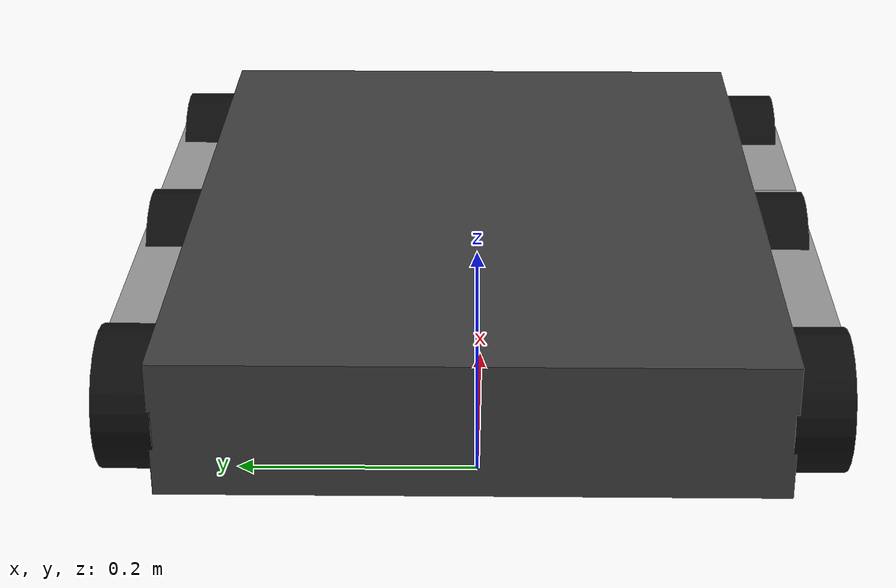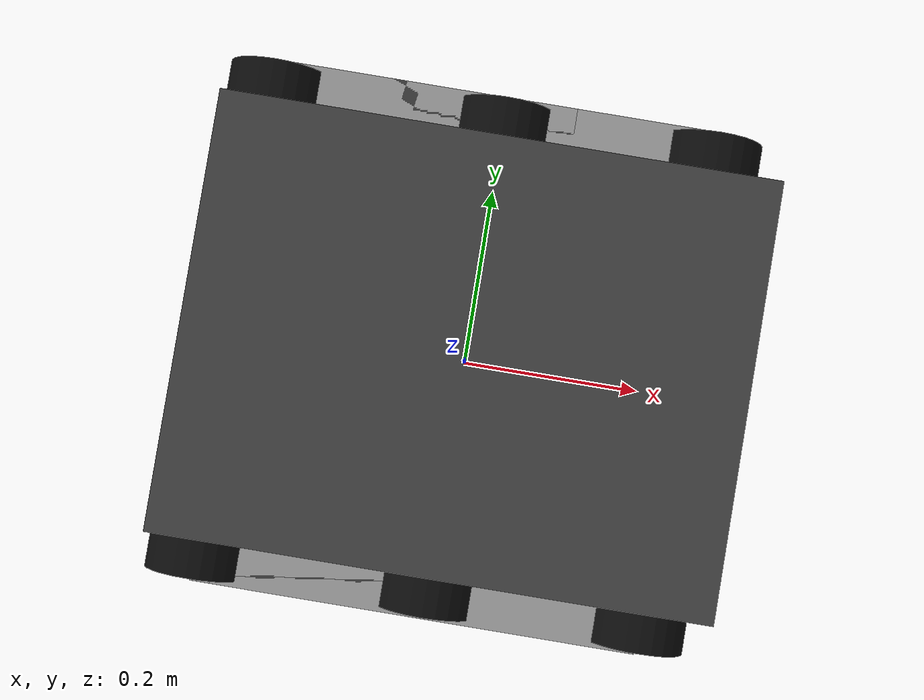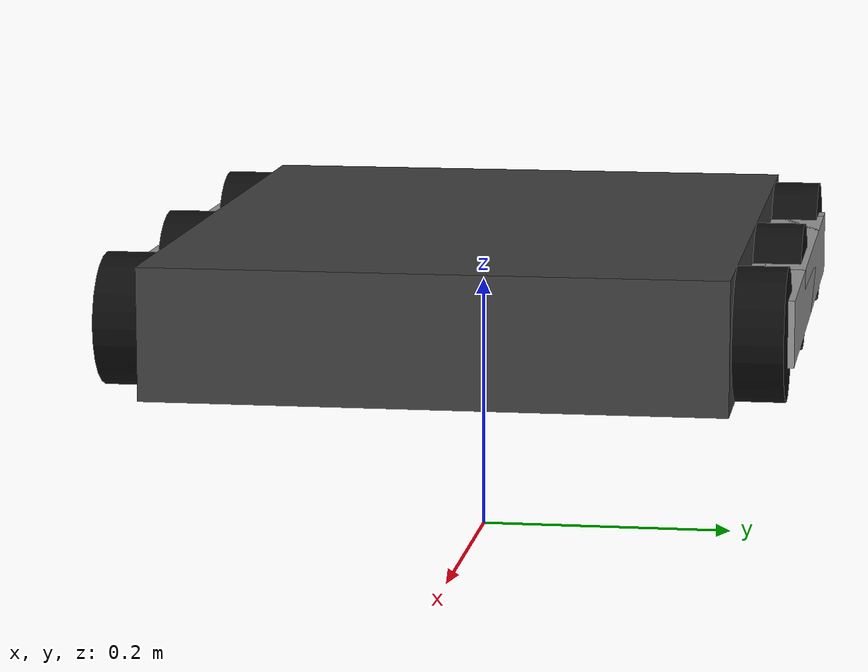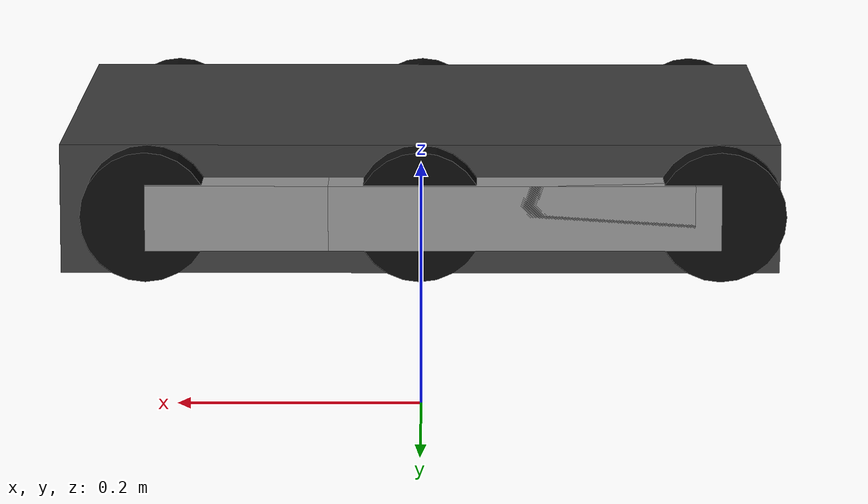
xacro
<?xml version="1.0"?>

<robot name="mptasd_rover"
       xmlns:xacro="http://www.ros.org/wiki/xacro">

  <!-- PARAMETERS -->

  <!-- Rover dimensions -->
  <xacro:property name="body_length" value="0.555"/>
  <xacro:property name="body_width"  value="0.435"/>
  <xacro:property name="body_height" value="0.10"/>

  <!-- Wheel -->
  <xacro:property name="wheel_radius" value="0.05"/>
  <xacro:property name="wheel_width"  value="0.04"/>

  <!-- Wheel positions -->
  <xacro:property name="wheel_x" value="0.20"/>
  <xacro:property name="wheel_y" value="0.235"/>

  <!-- MATERIALS -->

  <material name="body_material">
    <color rgba="0.25 0.25 0.25 1.0"/>
  </material>

  <material name="wheel_material">
    <color rgba="0.05 0.05 0.05 1.0"/>
  </material>

  <material name="suspension_material">
    <color rgba="0.6 0.6 0.6 1.0"/>
  </material>

  <!-- BASE FOOTPRINT -->

  <link name="base_footprint"/>

  <joint name="base_footprint_joint" type="fixed">
    <parent link="base_footprint"/>
    <child link="base_link"/>
    <origin xyz="0 0 0.10" rpy="0 0 0"/>
  </joint>

  <!-- MAIN BODY -->

  <link name="base_link">

    <visual>
      <origin xyz="0 0 0.10"/>
      <geometry>
        <box size="${body_length} ${body_width} ${body_height}"/>
      </geometry>
      <material name="body_material"/>
    </visual>

    <collision>
      <origin xyz="0 0 0.10"/>
      <geometry>
        <box size="${body_length} ${body_width} ${body_height}"/>
      </geometry>
    </collision>

  </link>

  <!-- LEFT ROCKER -->

  <link name="rocker_left">

    <visual>
      <origin xyz="0 0 0"/>
      <geometry>
        <box size="0.42 0.05 0.05"/>
      </geometry>
      <material name="suspension_material"/>
    </visual>

  </link>

  <joint name="rocker_left_joint" type="revolute">

    <parent link="base_link"/>
    <child link="rocker_left"/>

    <origin xyz="0 0.235 0.10"/>

    <axis xyz="1 0 0"/>

    <limit
      lower="-0.7"
      upper="0.7"
      effort="50"
      velocity="1.0"/>

  </joint>

  <!-- RIGHT ROCKER -->

  <link name="rocker_right">

    <visual>
      <origin xyz="0 0 0"/>
      <geometry>
        <box size="0.42 0.05 0.05"/>
      </geometry>
      <material name="suspension_material"/>
    </visual>

  </link>

  <joint name="rocker_right_joint" type="revolute">

    <parent link="base_link"/>
    <child link="rocker_right"/>

    <origin xyz="0 -0.235 0.10"/>

    <axis xyz="1 0 0"/>

    <limit
      lower="-0.7"
      upper="0.7"
      effort="50"
      velocity="1.0"/>

  </joint>

  <!-- LEFT BOGIE -->

  <link name="bogie_left">

    <visual>
      <origin xyz="0 0 0"/>
      <geometry>
        <box size="0.30 0.05 0.05"/>
      </geometry>
      <material name="suspension_material"/>
    </visual>

  </link>

  <joint name="bogie_left_joint" type="revolute">

    <parent link="rocker_left"/>
    <child link="bogie_left"/>

    <origin xyz="-0.08 0 0"/>

    <axis xyz="1 0 0"/>

    <limit
      lower="-0.8"
      upper="0.8"
      effort="50"
      velocity="1.0"/>

  </joint>

  <!-- RIGHT BOGIE -->

  <link name="bogie_right">

    <visual>
      <origin xyz="0 0 0"/>
      <geometry>
        <box size="0.30 0.05 0.05"/>
      </geometry>
      <material name="suspension_material"/>
    </visual>

  </link>

  <joint name="bogie_right_joint" type="revolute">

    <parent link="rocker_right"/>
    <child link="bogie_right"/>

    <origin xyz="-0.08 0 0"/>

    <axis xyz="1 0 0"/>

    <limit
      lower="-0.8"
      upper="0.8"
      effort="50"
      velocity="1.0"/>

  </joint>

  <!-- WHEEL MACRO -->

  <xacro:macro name="wheel" params="name parent x y">

    <link name="${name}">

      <visual>
        <origin xyz="0 0 0" rpy="1.5708 0 0"/>

        <geometry>
          <cylinder
            radius="${wheel_radius}"
            length="${wheel_width}"/>
        </geometry>

        <material name="wheel_material"/>
      </visual>

      <collision>
        <origin xyz="0 0 0" rpy="1.5708 0 0"/>

        <geometry>
          <cylinder
            radius="${wheel_radius}"
            length="${wheel_width}"/>
        </geometry>
      </collision>

    </link>

    <joint name="${name}_joint" type="continuous">

      <parent link="${parent}"/>
      <child link="${name}"/>

      <origin xyz="${x} ${y} 0"/>

      <axis xyz="0 1 0"/>

    </joint>

  </xacro:macro>

  <!-- LEFT WHEELS -->

  <!-- Front left -->
  <xacro:wheel
    name="front_left_wheel"
    parent="rocker_left"
    x="0.21"
    y="0"/>

  <!-- Middle left -->
  <xacro:wheel
    name="middle_left_wheel"
    parent="bogie_left"
    x="0.08"
    y="0"/>

  <!-- Rear left -->
  <xacro:wheel
    name="rear_left_wheel"
    parent="bogie_left"
    x="-0.15"
    y="0"/>

  <!-- RIGHT WHEELS -->

  <!-- Front right -->
  <xacro:wheel
    name="front_right_wheel"
    parent="rocker_right"
    x="0.21"
    y="0"/>

  <!-- Middle right -->
  <xacro:wheel
    name="middle_right_wheel"
    parent="bogie_right"
    x="0.08"
    y="0"/>

  <!-- Rear right -->
  <xacro:wheel
    name="rear_right_wheel"
    parent="bogie_right"
    x="-0.15"
    y="0"/>

</robot>
